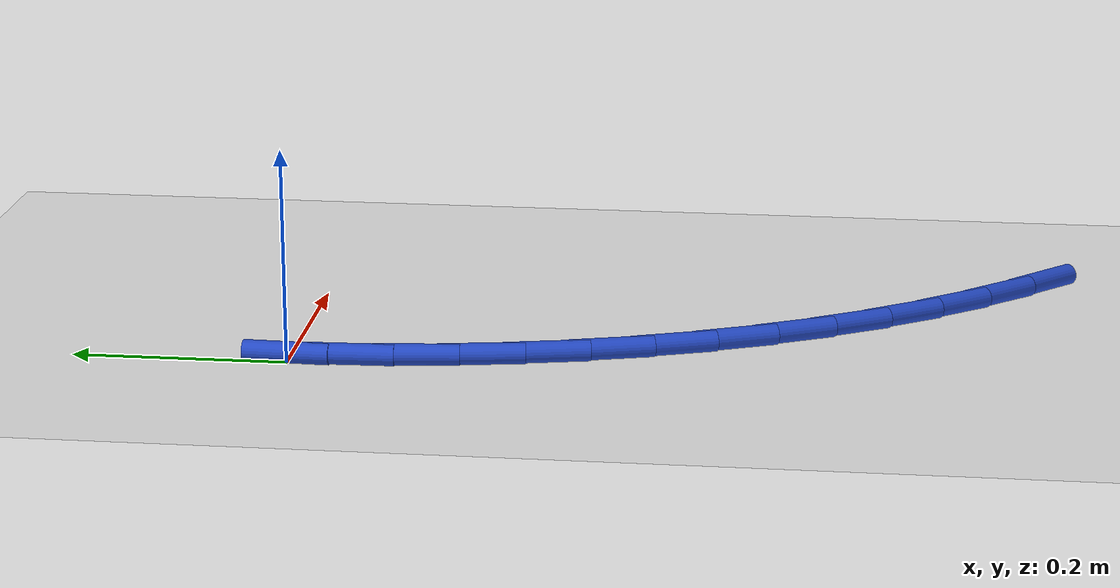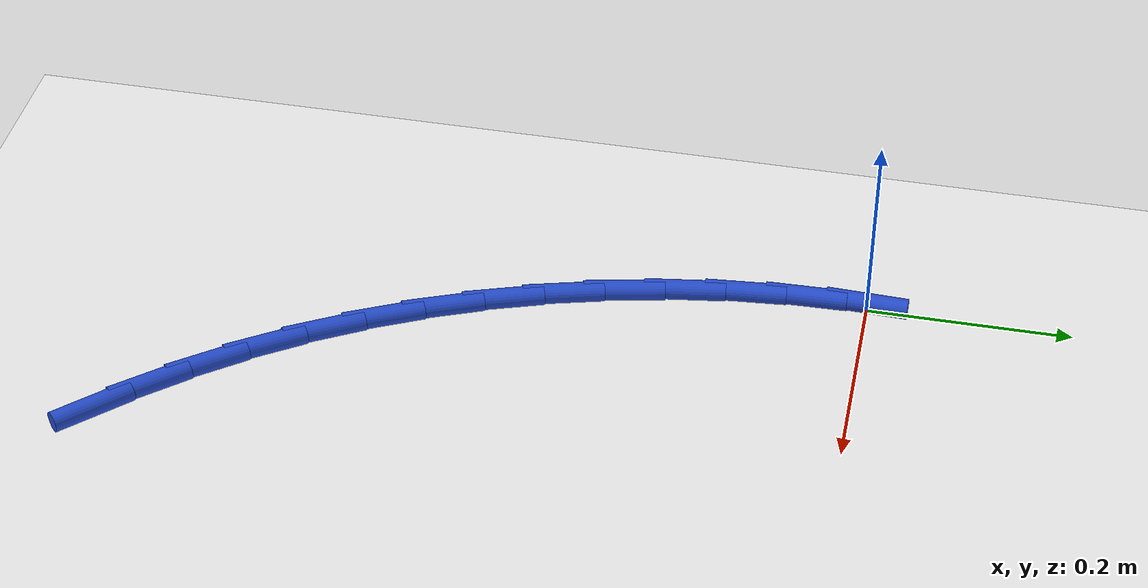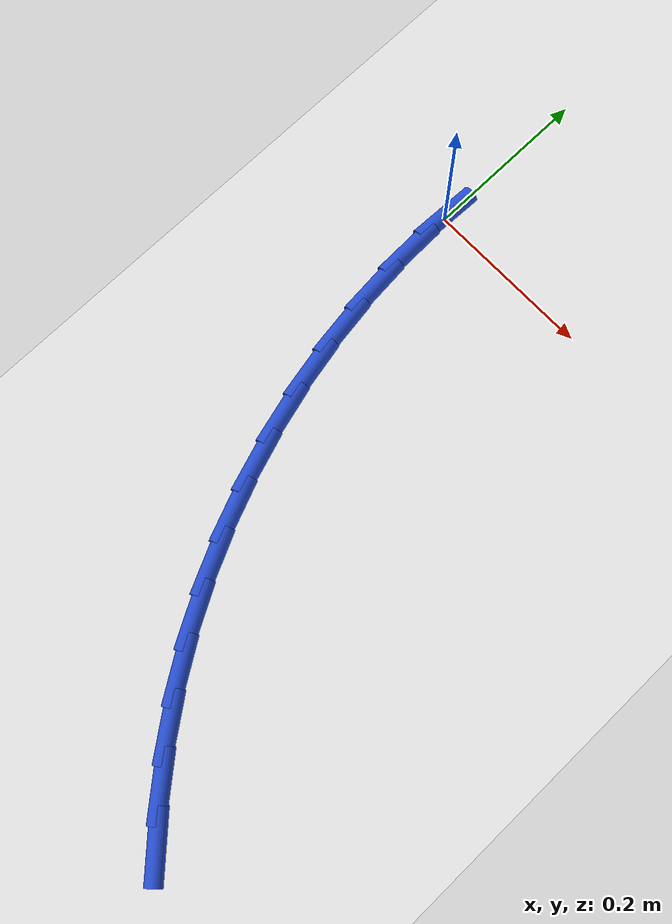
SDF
<sdf version="1.6">
 <world name="default">
  <model name="ground_plane">
   <static>1</static>
   <link name="link">
    <collision name="collision">
     <geometry><plane><normal>0 0 1</normal><size>100 100</size></plane></geometry>
     <surface><friction><ode><mu>100</mu><mu2>50</mu2></ode></friction></surface>
    </collision>
    <visual name="visual">
     <cast_shadows>0</cast_shadows>
     <geometry><plane><normal>0 0 1</normal><size>100 100</size></plane></geometry>
     <material>
      <script><uri>file://media/materials/scripts/gazebo.material</uri><name>Gazebo/WhiteGlow</name></script>
     </material>
    </visual>
   </link>
  </model>
  <model name="line">
   <link name="link_0">
    <pose>5.204170427930421e-17 -5.551115123125783e-17 0.01 0 1.57 1.5353956261646806</pose>
    <collision name="collision">
     <geometry><cylinder><radius>0.01</radius><length>0.08</length></cylinder></geometry>
    </collision>
    <visual name="visual">
     <material>
      <script><name>Gazebo/Blue</name><uri>file://media/materials/scripts/gazebo.material</uri></script>
     </material>
     <geometry><cylinder><radius>0.01</radius><length>0.08</length></cylinder></geometry>
    </visual>
   </link>
   <link name="link_97">
    <pose>0.2840165675693952 -0.6923302922879442 0.01 0 1.57 -0.8091685758826567</pose>
    <collision name="collision">
     <geometry><cylinder><radius>0.01</radius><length>0.08</length></cylinder></geometry>
    </collision>
    <visual name="visual">
     <material>
      <script><name>Gazebo/Blue</name><uri>file://media/materials/scripts/gazebo.material</uri></script>
     </material>
     <geometry><cylinder><radius>0.01</radius><length>0.08</length></cylinder></geometry>
    </visual>
   </link>
   <link name="link_98">
    <pose>0.2435476751069313 -0.649890248954133 0.01 0 1.57 -0.8681001583595542</pose>
    <collision name="collision">
     <geometry><cylinder><radius>0.01</radius><length>0.08</length></cylinder></geometry>
    </collision>
    <visual name="visual">
     <material>
      <script><name>Gazebo/Blue</name><uri>file://media/materials/scripts/gazebo.material</uri></script>
     </material>
     <geometry><cylinder><radius>0.01</radius><length>0.08</length></cylinder></geometry>
    </visual>
   </link>
   <link name="link_99">
    <pose>0.2057073950614448 -0.6052097324172138 0.01 0 1.57 -0.9302507020908083</pose>
    <collision name="collision">
     <geometry><cylinder><radius>0.01</radius><length>0.08</length></cylinder></geometry>
    </collision>
    <visual name="visual">
     <material>
      <script><name>Gazebo/Blue</name><uri>file://media/materials/scripts/gazebo.material</uri></script>
     </material>
     <geometry><cylinder><radius>0.01</radius><length>0.08</length></cylinder></geometry>
    </visual>
   </link>
   <link name="link_100">
    <pose>0.17070730959641725 -0.5582544747388962 0.01 0 1.57 -0.9952556604695221</pose>
    <collision name="collision">
     <geometry><cylinder><radius>0.01</radius><length>0.08</length></cylinder></geometry>
    </collision>
    <visual name="visual">
     <material>
      <script><name>Gazebo/Blue</name><uri>file://media/materials/scripts/gazebo.material</uri></script>
     </material>
     <geometry><cylinder><radius>0.01</radius><length>0.08</length></cylinder></geometry>
    </visual>
   </link>
   <link name="link_101">
    <pose>0.1387522238726309 -0.509002900564748 0.01 0 1.57 -1.0602119849861114</pose>
    <collision name="collision">
     <geometry><cylinder><radius>0.01</radius><length>0.08</length></cylinder></geometry>
    </collision>
    <visual name="visual">
     <material>
      <script><name>Gazebo/Blue</name><uri>file://media/materials/scripts/gazebo.material</uri></script>
     </material>
     <geometry><cylinder><radius>0.01</radius><length>0.08</length></cylinder></geometry>
    </visual>
   </link>
   <link name="link_102">
    <pose>0.10995903664754224 -0.4575980736064484 0.01 0 1.57 -1.1234025677692614</pose>
    <collision name="collision">
     <geometry><cylinder><radius>0.01</radius><length>0.08</length></cylinder></geometry>
    </collision>
    <visual name="visual">
     <material>
      <script><name>Gazebo/Blue</name><uri>file://media/materials/scripts/gazebo.material</uri></script>
     </material>
     <geometry><cylinder><radius>0.01</radius><length>0.08</length></cylinder></geometry>
    </visual>
   </link>
   <link name="link_103">
    <pose>0.08438327664577125 -0.4042979969260765 0.01 0 1.57 -1.185121100388401</pose>
    <collision name="collision">
     <geometry><cylinder><radius>0.01</radius><length>0.08</length></cylinder></geometry>
    </collision>
    <visual name="visual">
     <material>
      <script><name>Gazebo/Blue</name><uri>file://media/materials/scripts/gazebo.material</uri></script>
     </material>
     <geometry><cylinder><radius>0.01</radius><length>0.08</length></cylinder></geometry>
    </visual>
   </link>
   <link name="link_104">
    <pose>0.062079218642480845 -0.3493630220957091 0.01 0 1.57 -1.2457211428864974</pose>
    <collision name="collision">
     <geometry><cylinder><radius>0.01</radius><length>0.08</length></cylinder></geometry>
    </collision>
    <visual name="visual">
     <material>
      <script><name>Gazebo/Blue</name><uri>file://media/materials/scripts/gazebo.material</uri></script>
     </material>
     <geometry><cylinder><radius>0.01</radius><length>0.08</length></cylinder></geometry>
    </visual>
   </link>
   <link name="link_105">
    <pose>0.043101137412835215 -0.2930535006874259 0.01 0 1.57 -1.3055686980636318</pose>
    <collision name="collision">
     <geometry><cylinder><radius>0.01</radius><length>0.08</length></cylinder></geometry>
    </collision>
    <visual name="visual">
     <material>
      <script><name>Gazebo/Blue</name><uri>file://media/materials/scripts/gazebo.material</uri></script>
     </material>
     <geometry><cylinder><radius>0.01</radius><length>0.08</length></cylinder></geometry>
    </visual>
   </link>
   <link name="link_106">
    <pose>0.027503307731997478 -0.23562978427330367 0.01 0 1.57 -1.3650367791053453</pose>
    <collision name="collision">
     <geometry><cylinder><radius>0.01</radius><length>0.08</length></cylinder></geometry>
    </collision>
    <visual name="visual">
     <material>
      <script><name>Gazebo/Blue</name><uri>file://media/materials/scripts/gazebo.material</uri></script>
     </material>
     <geometry><cylinder><radius>0.01</radius><length>0.08</length></cylinder></geometry>
    </visual>
   </link>
   <link name="link_107">
    <pose>0.015340004375131614 -0.17735222442542237 0.01 0 1.57 -1.424501515775962</pose>
    <collision name="collision">
     <geometry><cylinder><radius>0.01</radius><length>0.08</length></cylinder></geometry>
    </collision>
    <visual name="visual">
     <material>
      <script><name>Gazebo/Blue</name><uri>file://media/materials/scripts/gazebo.material</uri></script>
     </material>
     <geometry><cylinder><radius>0.01</radius><length>0.08</length></cylinder></geometry>
    </visual>
   </link>
   <link name="link_108">
    <pose>0.006665502117400936 -0.11848117271585863 0.01 0 1.57 -1.4843390293845204</pose>
    <collision name="collision">
     <geometry><cylinder><radius>0.01</radius><length>0.08</length></cylinder></geometry>
    </collision>
    <visual name="visual">
     <material>
      <script><name>Gazebo/Blue</name><uri>file://media/materials/scripts/gazebo.material</uri></script>
     </material>
     <geometry><cylinder><radius>0.01</radius><length>0.08</length></cylinder></geometry>
    </visual>
   </link>
   <link name="link_109">
    <pose>0.001534075733969251 -0.05927698071669217 0.01 0 1.57 -1.544922313582677</pose>
    <collision name="collision">
     <geometry><cylinder><radius>0.01</radius><length>0.08</length></cylinder></geometry>
    </collision>
    <visual name="visual">
     <material>
      <script><name>Gazebo/Blue</name><uri>file://media/materials/scripts/gazebo.material</uri></script>
     </material>
     <geometry><cylinder><radius>0.01</radius><length>0.08</length></cylinder></geometry>
    </visual>
   </link>
  </model>
 </world>
</sdf>
